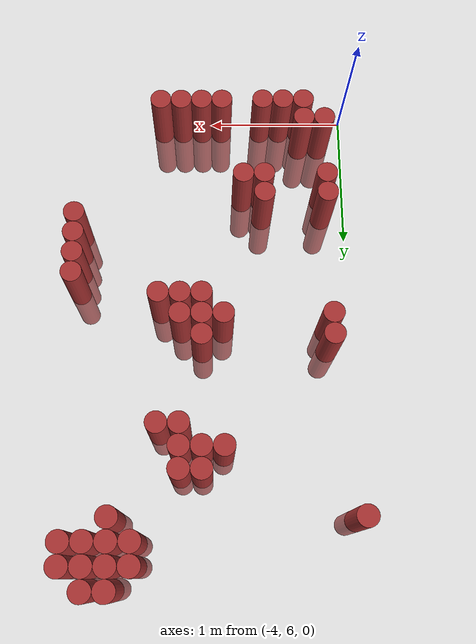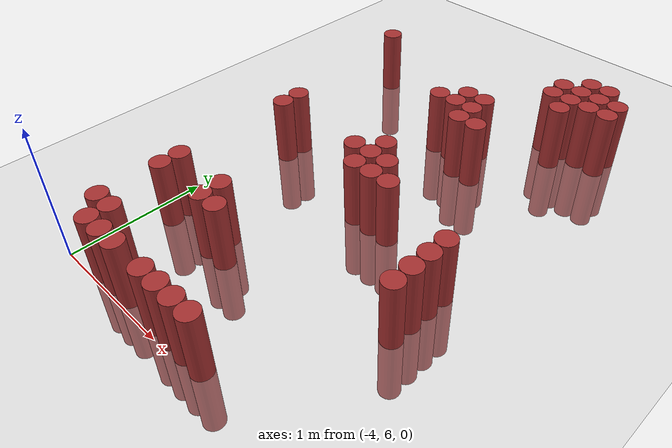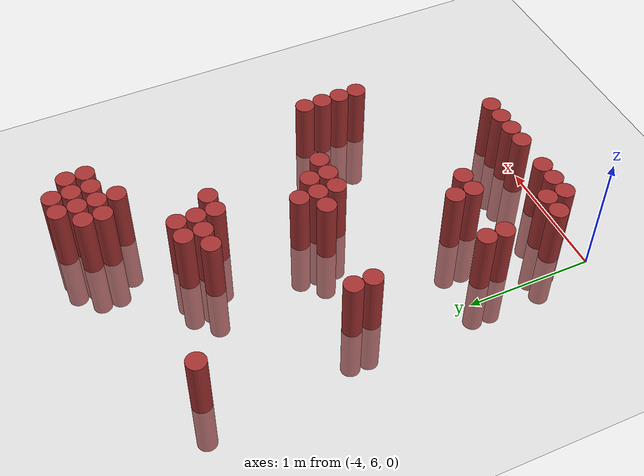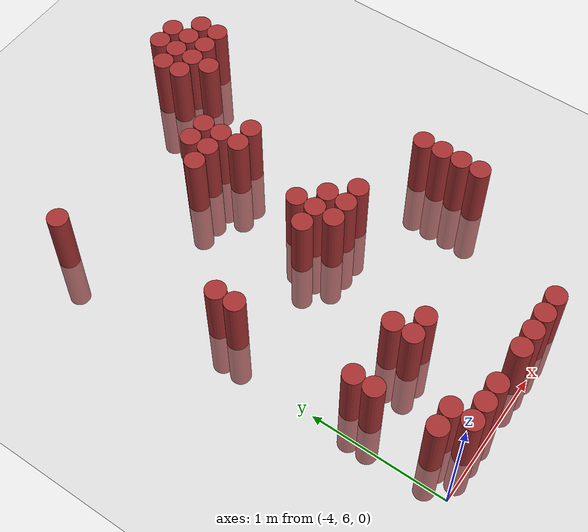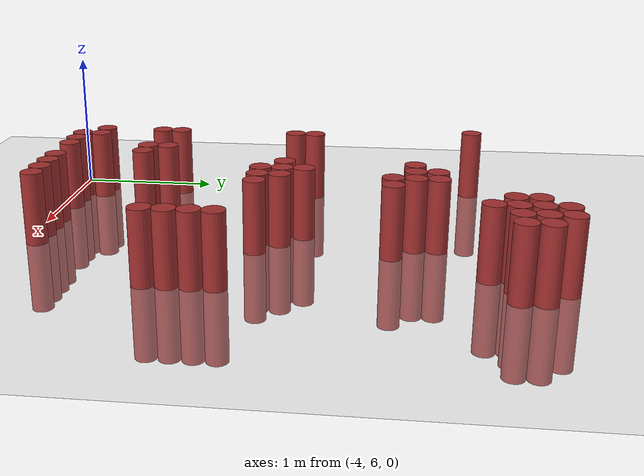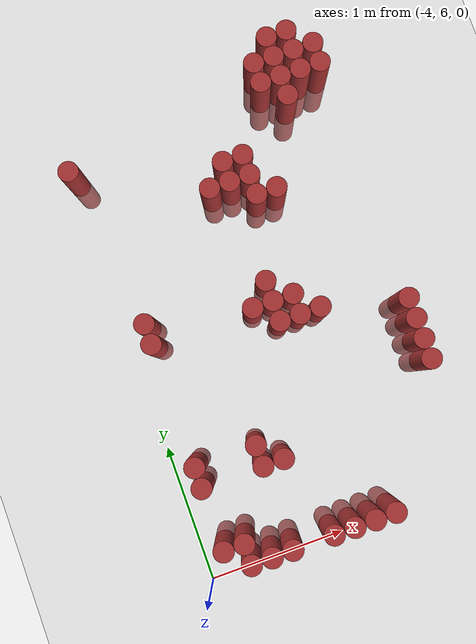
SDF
<sdf version="1.6">
 <world name="world_299">
  <model name="ground_plane">
   <static>1</static>
   <link name="link">
    <collision name="collision">
     <geometry><plane><normal>0 0 1</normal><size>100 100</size></plane></geometry>
     <surface><friction><ode><mu>100</mu><mu2>50</mu2></ode></friction></surface>
    </collision>
    <visual name="visual">
     <cast_shadows>0</cast_shadows>
     <geometry><plane><normal>0 0 1</normal><size>100 100</size></plane></geometry>
     <material>
      <script><uri>file://media/materials/scripts/gazebo.material</uri><name>Gazebo/Grey</name></script>
     </material>
    </visual>
   </link>
  </model>
  <model name="unit_cylinder_158">
   <static>1</static>
   <pose>-3.975000 9.075000 0.000000 0.000000 0.000000 0.000000</pose>
   <link name="link">
    <inertial>
     <mass>1</mass>
     <inertia><ixx>0.145833</ixx><ixy>0</ixy><ixz>0</ixz><iyy>0.145833</iyy><iyz>0</iyz><izz>0.125</izz></inertia>
    </inertial>
    <collision name="collision">
     <geometry><cylinder><radius>0.075000</radius><length>1</length></cylinder></geometry>
    </collision>
    <visual name="visual">
     <geometry><cylinder><radius>0.075000</radius><length>1</length></cylinder></geometry>
     <material>
      <ambient>0.648000 0.192000 0.192000 1</ambient>
      <diffuse>0.648000 0.192000 0.192000 1</diffuse>
     </material>
     <material>
      <script><name>Gazebo/Grey</name><uri>file://media/materials/scripts/gazebo.material</uri></script>
     </material>
    </visual>
   </link>
  </model>
  <model name="unit_cylinder_162">
   <static>1</static>
   <pose>-3.825000 6.225000 0.000000 0.000000 0.000000 0.000000</pose>
   <link name="link">
    <inertial>
     <mass>1</mass>
     <inertia><ixx>0.145833</ixx><ixy>0</ixy><ixz>0</ixz><iyy>0.145833</iyy><iyz>0</iyz><izz>0.125</izz></inertia>
    </inertial>
    <collision name="collision">
     <geometry><cylinder><radius>0.075000</radius><length>1</length></cylinder></geometry>
    </collision>
    <visual name="visual">
     <geometry><cylinder><radius>0.075000</radius><length>1</length></cylinder></geometry>
     <material>
      <ambient>0.648000 0.192000 0.192000 1</ambient>
      <diffuse>0.648000 0.192000 0.192000 1</diffuse>
     </material>
     <material>
      <script><name>Gazebo/Grey</name><uri>file://media/materials/scripts/gazebo.material</uri></script>
     </material>
    </visual>
   </link>
  </model>
  <model name="unit_cylinder_163">
   <static>1</static>
   <pose>-3.825000 6.675000 0.000000 0.000000 0.000000 0.000000</pose>
   <link name="link">
    <inertial>
     <mass>1</mass>
     <inertia><ixx>0.145833</ixx><ixy>0</ixy><ixz>0</ixz><iyy>0.145833</iyy><iyz>0</iyz><izz>0.125</izz></inertia>
    </inertial>
    <collision name="collision">
     <geometry><cylinder><radius>0.075000</radius><length>1</length></cylinder></geometry>
    </collision>
    <visual name="visual">
     <geometry><cylinder><radius>0.075000</radius><length>1</length></cylinder></geometry>
     <material>
      <ambient>0.648000 0.192000 0.192000 1</ambient>
      <diffuse>0.648000 0.192000 0.192000 1</diffuse>
     </material>
     <material>
      <script><name>Gazebo/Grey</name><uri>file://media/materials/scripts/gazebo.material</uri></script>
     </material>
    </visual>
   </link>
  </model>
  <model name="unit_cylinder_164">
   <static>1</static>
   <pose>-3.825000 6.825000 0.000000 0.000000 0.000000 0.000000</pose>
   <link name="link">
    <inertial>
     <mass>1</mass>
     <inertia><ixx>0.145833</ixx><ixy>0</ixy><ixz>0</ixz><iyy>0.145833</iyy><iyz>0</iyz><izz>0.125</izz></inertia>
    </inertial>
    <collision name="collision">
     <geometry><cylinder><radius>0.075000</radius><length>1</length></cylinder></geometry>
    </collision>
    <visual name="visual">
     <geometry><cylinder><radius>0.075000</radius><length>1</length></cylinder></geometry>
     <material>
      <ambient>0.648000 0.192000 0.192000 1</ambient>
      <diffuse>0.648000 0.192000 0.192000 1</diffuse>
     </material>
     <material>
      <script><name>Gazebo/Grey</name><uri>file://media/materials/scripts/gazebo.material</uri></script>
     </material>
    </visual>
   </link>
  </model>
  <model name="unit_cylinder_165">
   <static>1</static>
   <pose>-3.825000 7.725000 0.000000 0.000000 0.000000 0.000000</pose>
   <link name="link">
    <inertial>
     <mass>1</mass>
     <inertia><ixx>0.145833</ixx><ixy>0</ixy><ixz>0</ixz><iyy>0.145833</iyy><iyz>0</iyz><izz>0.125</izz></inertia>
    </inertial>
    <collision name="collision">
     <geometry><cylinder><radius>0.075000</radius><length>1</length></cylinder></geometry>
    </collision>
    <visual name="visual">
     <geometry><cylinder><radius>0.075000</radius><length>1</length></cylinder></geometry>
     <material>
      <ambient>0.648000 0.192000 0.192000 1</ambient>
      <diffuse>0.648000 0.192000 0.192000 1</diffuse>
     </material>
     <material>
      <script><name>Gazebo/Grey</name><uri>file://media/materials/scripts/gazebo.material</uri></script>
     </material>
    </visual>
   </link>
  </model>
  <model name="unit_cylinder_166">
   <static>1</static>
   <pose>-3.825000 7.875000 0.000000 0.000000 0.000000 0.000000</pose>
   <link name="link">
    <inertial>
     <mass>1</mass>
     <inertia><ixx>0.145833</ixx><ixy>0</ixy><ixz>0</ixz><iyy>0.145833</iyy><iyz>0</iyz><izz>0.125</izz></inertia>
    </inertial>
    <collision name="collision">
     <geometry><cylinder><radius>0.075000</radius><length>1</length></cylinder></geometry>
    </collision>
    <visual name="visual">
     <geometry><cylinder><radius>0.075000</radius><length>1</length></cylinder></geometry>
     <material>
      <ambient>0.648000 0.192000 0.192000 1</ambient>
      <diffuse>0.648000 0.192000 0.192000 1</diffuse>
     </material>
     <material>
      <script><name>Gazebo/Grey</name><uri>file://media/materials/scripts/gazebo.material</uri></script>
     </material>
    </visual>
   </link>
  </model>
  <model name="unit_cylinder_168">
   <static>1</static>
   <pose>-3.675000 6.075000 0.000000 0.000000 0.000000 0.000000</pose>
   <link name="link">
    <inertial>
     <mass>1</mass>
     <inertia><ixx>0.145833</ixx><ixy>0</ixy><ixz>0</ixz><iyy>0.145833</iyy><iyz>0</iyz><izz>0.125</izz></inertia>
    </inertial>
    <collision name="collision">
     <geometry><cylinder><radius>0.075000</radius><length>1</length></cylinder></geometry>
    </collision>
    <visual name="visual">
     <geometry><cylinder><radius>0.075000</radius><length>1</length></cylinder></geometry>
     <material>
      <ambient>0.648000 0.192000 0.192000 1</ambient>
      <diffuse>0.648000 0.192000 0.192000 1</diffuse>
     </material>
     <material>
      <script><name>Gazebo/Grey</name><uri>file://media/materials/scripts/gazebo.material</uri></script>
     </material>
    </visual>
   </link>
  </model>
  <model name="unit_cylinder_169">
   <static>1</static>
   <pose>-3.675000 6.225000 0.000000 0.000000 0.000000 0.000000</pose>
   <link name="link">
    <inertial>
     <mass>1</mass>
     <inertia><ixx>0.145833</ixx><ixy>0</ixy><ixz>0</ixz><iyy>0.145833</iyy><iyz>0</iyz><izz>0.125</izz></inertia>
    </inertial>
    <collision name="collision">
     <geometry><cylinder><radius>0.075000</radius><length>1</length></cylinder></geometry>
    </collision>
    <visual name="visual">
     <geometry><cylinder><radius>0.075000</radius><length>1</length></cylinder></geometry>
     <material>
      <ambient>0.648000 0.192000 0.192000 1</ambient>
      <diffuse>0.648000 0.192000 0.192000 1</diffuse>
     </material>
     <material>
      <script><name>Gazebo/Grey</name><uri>file://media/materials/scripts/gazebo.material</uri></script>
     </material>
    </visual>
   </link>
  </model>
  <model name="unit_cylinder_174">
   <static>1</static>
   <pose>-3.525000 6.075000 0.000000 0.000000 0.000000 0.000000</pose>
   <link name="link">
    <inertial>
     <mass>1</mass>
     <inertia><ixx>0.145833</ixx><ixy>0</ixy><ixz>0</ixz><iyy>0.145833</iyy><iyz>0</iyz><izz>0.125</izz></inertia>
    </inertial>
    <collision name="collision">
     <geometry><cylinder><radius>0.075000</radius><length>1</length></cylinder></geometry>
    </collision>
    <visual name="visual">
     <geometry><cylinder><radius>0.075000</radius><length>1</length></cylinder></geometry>
     <material>
      <ambient>0.648000 0.192000 0.192000 1</ambient>
      <diffuse>0.648000 0.192000 0.192000 1</diffuse>
     </material>
     <material>
      <script><name>Gazebo/Grey</name><uri>file://media/materials/scripts/gazebo.material</uri></script>
     </material>
    </visual>
   </link>
  </model>
  <model name="unit_cylinder_176">
   <static>1</static>
   <pose>-3.375000 6.075000 0.000000 0.000000 0.000000 0.000000</pose>
   <link name="link">
    <inertial>
     <mass>1</mass>
     <inertia><ixx>0.145833</ixx><ixy>0</ixy><ixz>0</ixz><iyy>0.145833</iyy><iyz>0</iyz><izz>0.125</izz></inertia>
    </inertial>
    <collision name="collision">
     <geometry><cylinder><radius>0.075000</radius><length>1</length></cylinder></geometry>
    </collision>
    <visual name="visual">
     <geometry><cylinder><radius>0.075000</radius><length>1</length></cylinder></geometry>
     <material>
      <ambient>0.648000 0.192000 0.192000 1</ambient>
      <diffuse>0.648000 0.192000 0.192000 1</diffuse>
     </material>
     <material>
      <script><name>Gazebo/Grey</name><uri>file://media/materials/scripts/gazebo.material</uri></script>
     </material>
    </visual>
   </link>
  </model>
  <model name="unit_cylinder_177">
   <static>1</static>
   <pose>-3.375000 6.675000 0.000000 0.000000 0.000000 0.000000</pose>
   <link name="link">
    <inertial>
     <mass>1</mass>
     <inertia><ixx>0.145833</ixx><ixy>0</ixy><ixz>0</ixz><iyy>0.145833</iyy><iyz>0</iyz><izz>0.125</izz></inertia>
    </inertial>
    <collision name="collision">
     <geometry><cylinder><radius>0.075000</radius><length>1</length></cylinder></geometry>
    </collision>
    <visual name="visual">
     <geometry><cylinder><radius>0.075000</radius><length>1</length></cylinder></geometry>
     <material>
      <ambient>0.648000 0.192000 0.192000 1</ambient>
      <diffuse>0.648000 0.192000 0.192000 1</diffuse>
     </material>
     <material>
      <script><name>Gazebo/Grey</name><uri>file://media/materials/scripts/gazebo.material</uri></script>
     </material>
    </visual>
   </link>
  </model>
  <model name="unit_cylinder_178">
   <static>1</static>
   <pose>-3.375000 6.825000 0.000000 0.000000 0.000000 0.000000</pose>
   <link name="link">
    <inertial>
     <mass>1</mass>
     <inertia><ixx>0.145833</ixx><ixy>0</ixy><ixz>0</ixz><iyy>0.145833</iyy><iyz>0</iyz><izz>0.125</izz></inertia>
    </inertial>
    <collision name="collision">
     <geometry><cylinder><radius>0.075000</radius><length>1</length></cylinder></geometry>
    </collision>
    <visual name="visual">
     <geometry><cylinder><radius>0.075000</radius><length>1</length></cylinder></geometry>
     <material>
      <ambient>0.648000 0.192000 0.192000 1</ambient>
      <diffuse>0.648000 0.192000 0.192000 1</diffuse>
     </material>
     <material>
      <script><name>Gazebo/Grey</name><uri>file://media/materials/scripts/gazebo.material</uri></script>
     </material>
    </visual>
   </link>
  </model>
  <model name="unit_cylinder_179">
   <static>1</static>
   <pose>-3.225000 6.675000 0.000000 0.000000 0.000000 0.000000</pose>
   <link name="link">
    <inertial>
     <mass>1</mass>
     <inertia><ixx>0.145833</ixx><ixy>0</ixy><ixz>0</ixz><iyy>0.145833</iyy><iyz>0</iyz><izz>0.125</izz></inertia>
    </inertial>
    <collision name="collision">
     <geometry><cylinder><radius>0.075000</radius><length>1</length></cylinder></geometry>
    </collision>
    <visual name="visual">
     <geometry><cylinder><radius>0.075000</radius><length>1</length></cylinder></geometry>
     <material>
      <ambient>0.648000 0.192000 0.192000 1</ambient>
      <diffuse>0.648000 0.192000 0.192000 1</diffuse>
     </material>
     <material>
      <script><name>Gazebo/Grey</name><uri>file://media/materials/scripts/gazebo.material</uri></script>
     </material>
    </visual>
   </link>
  </model>
  <model name="unit_cylinder_182">
   <static>1</static>
   <pose>-3.075000 6.075000 0.000000 0.000000 0.000000 0.000000</pose>
   <link name="link">
    <inertial>
     <mass>1</mass>
     <inertia><ixx>0.145833</ixx><ixy>0</ixy><ixz>0</ixz><iyy>0.145833</iyy><iyz>0</iyz><izz>0.125</izz></inertia>
    </inertial>
    <collision name="collision">
     <geometry><cylinder><radius>0.075000</radius><length>1</length></cylinder></geometry>
    </collision>
    <visual name="visual">
     <geometry><cylinder><radius>0.075000</radius><length>1</length></cylinder></geometry>
     <material>
      <ambient>0.648000 0.192000 0.192000 1</ambient>
      <diffuse>0.648000 0.192000 0.192000 1</diffuse>
     </material>
     <material>
      <script><name>Gazebo/Grey</name><uri>file://media/materials/scripts/gazebo.material</uri></script>
     </material>
    </visual>
   </link>
  </model>
  <model name="unit_cylinder_183">
   <static>1</static>
   <pose>-3.075000 7.725000 0.000000 0.000000 0.000000 0.000000</pose>
   <link name="link">
    <inertial>
     <mass>1</mass>
     <inertia><ixx>0.145833</ixx><ixy>0</ixy><ixz>0</ixz><iyy>0.145833</iyy><iyz>0</iyz><izz>0.125</izz></inertia>
    </inertial>
    <collision name="collision">
     <geometry><cylinder><radius>0.075000</radius><length>1</length></cylinder></geometry>
    </collision>
    <visual name="visual">
     <geometry><cylinder><radius>0.075000</radius><length>1</length></cylinder></geometry>
     <material>
      <ambient>0.648000 0.192000 0.192000 1</ambient>
      <diffuse>0.648000 0.192000 0.192000 1</diffuse>
     </material>
     <material>
      <script><name>Gazebo/Grey</name><uri>file://media/materials/scripts/gazebo.material</uri></script>
     </material>
    </visual>
   </link>
  </model>
  <model name="unit_cylinder_184">
   <static>1</static>
   <pose>-3.075000 8.625000 0.000000 0.000000 0.000000 0.000000</pose>
   <link name="link">
    <inertial>
     <mass>1</mass>
     <inertia><ixx>0.145833</ixx><ixy>0</ixy><ixz>0</ixz><iyy>0.145833</iyy><iyz>0</iyz><izz>0.125</izz></inertia>
    </inertial>
    <collision name="collision">
     <geometry><cylinder><radius>0.075000</radius><length>1</length></cylinder></geometry>
    </collision>
    <visual name="visual">
     <geometry><cylinder><radius>0.075000</radius><length>1</length></cylinder></geometry>
     <material>
      <ambient>0.648000 0.192000 0.192000 1</ambient>
      <diffuse>0.648000 0.192000 0.192000 1</diffuse>
     </material>
     <material>
      <script><name>Gazebo/Grey</name><uri>file://media/materials/scripts/gazebo.material</uri></script>
     </material>
    </visual>
   </link>
  </model>
  <model name="unit_cylinder_186">
   <static>1</static>
   <pose>-2.925000 6.075000 0.000000 0.000000 0.000000 0.000000</pose>
   <link name="link">
    <inertial>
     <mass>1</mass>
     <inertia><ixx>0.145833</ixx><ixy>0</ixy><ixz>0</ixz><iyy>0.145833</iyy><iyz>0</iyz><izz>0.125</izz></inertia>
    </inertial>
    <collision name="collision">
     <geometry><cylinder><radius>0.075000</radius><length>1</length></cylinder></geometry>
    </collision>
    <visual name="visual">
     <geometry><cylinder><radius>0.075000</radius><length>1</length></cylinder></geometry>
     <material>
      <ambient>0.648000 0.192000 0.192000 1</ambient>
      <diffuse>0.648000 0.192000 0.192000 1</diffuse>
     </material>
     <material>
      <script><name>Gazebo/Grey</name><uri>file://media/materials/scripts/gazebo.material</uri></script>
     </material>
    </visual>
   </link>
  </model>
  <model name="unit_cylinder_187">
   <static>1</static>
   <pose>-2.925000 7.575000 0.000000 0.000000 0.000000 0.000000</pose>
   <link name="link">
    <inertial>
     <mass>1</mass>
     <inertia><ixx>0.145833</ixx><ixy>0</ixy><ixz>0</ixz><iyy>0.145833</iyy><iyz>0</iyz><izz>0.125</izz></inertia>
    </inertial>
    <collision name="collision">
     <geometry><cylinder><radius>0.075000</radius><length>1</length></cylinder></geometry>
    </collision>
    <visual name="visual">
     <geometry><cylinder><radius>0.075000</radius><length>1</length></cylinder></geometry>
     <material>
      <ambient>0.648000 0.192000 0.192000 1</ambient>
      <diffuse>0.648000 0.192000 0.192000 1</diffuse>
     </material>
     <material>
      <script><name>Gazebo/Grey</name><uri>file://media/materials/scripts/gazebo.material</uri></script>
     </material>
    </visual>
   </link>
  </model>
  <model name="unit_cylinder_188">
   <static>1</static>
   <pose>-2.925000 7.725000 0.000000 0.000000 0.000000 0.000000</pose>
   <link name="link">
    <inertial>
     <mass>1</mass>
     <inertia><ixx>0.145833</ixx><ixy>0</ixy><ixz>0</ixz><iyy>0.145833</iyy><iyz>0</iyz><izz>0.125</izz></inertia>
    </inertial>
    <collision name="collision">
     <geometry><cylinder><radius>0.075000</radius><length>1</length></cylinder></geometry>
    </collision>
    <visual name="visual">
     <geometry><cylinder><radius>0.075000</radius><length>1</length></cylinder></geometry>
     <material>
      <ambient>0.648000 0.192000 0.192000 1</ambient>
      <diffuse>0.648000 0.192000 0.192000 1</diffuse>
     </material>
     <material>
      <script><name>Gazebo/Grey</name><uri>file://media/materials/scripts/gazebo.material</uri></script>
     </material>
    </visual>
   </link>
  </model>
  <model name="unit_cylinder_189">
   <static>1</static>
   <pose>-2.925000 7.875000 0.000000 0.000000 0.000000 0.000000</pose>
   <link name="link">
    <inertial>
     <mass>1</mass>
     <inertia><ixx>0.145833</ixx><ixy>0</ixy><ixz>0</ixz><iyy>0.145833</iyy><iyz>0</iyz><izz>0.125</izz></inertia>
    </inertial>
    <collision name="collision">
     <geometry><cylinder><radius>0.075000</radius><length>1</length></cylinder></geometry>
    </collision>
    <visual name="visual">
     <geometry><cylinder><radius>0.075000</radius><length>1</length></cylinder></geometry>
     <material>
      <ambient>0.648000 0.192000 0.192000 1</ambient>
      <diffuse>0.648000 0.192000 0.192000 1</diffuse>
     </material>
     <material>
      <script><name>Gazebo/Grey</name><uri>file://media/materials/scripts/gazebo.material</uri></script>
     </material>
    </visual>
   </link>
  </model>
  <model name="unit_cylinder_190">
   <static>1</static>
   <pose>-2.925000 8.625000 0.000000 0.000000 0.000000 0.000000</pose>
   <link name="link">
    <inertial>
     <mass>1</mass>
     <inertia><ixx>0.145833</ixx><ixy>0</ixy><ixz>0</ixz><iyy>0.145833</iyy><iyz>0</iyz><izz>0.125</izz></inertia>
    </inertial>
    <collision name="collision">
     <geometry><cylinder><radius>0.075000</radius><length>1</length></cylinder></geometry>
    </collision>
    <visual name="visual">
     <geometry><cylinder><radius>0.075000</radius><length>1</length></cylinder></geometry>
     <material>
      <ambient>0.648000 0.192000 0.192000 1</ambient>
      <diffuse>0.648000 0.192000 0.192000 1</diffuse>
     </material>
     <material>
      <script><name>Gazebo/Grey</name><uri>file://media/materials/scripts/gazebo.material</uri></script>
     </material>
    </visual>
   </link>
  </model>
  <model name="unit_cylinder_191">
   <static>1</static>
   <pose>-2.925000 8.775000 0.000000 0.000000 0.000000 0.000000</pose>
   <link name="link">
    <inertial>
     <mass>1</mass>
     <inertia><ixx>0.145833</ixx><ixy>0</ixy><ixz>0</ixz><iyy>0.145833</iyy><iyz>0</iyz><izz>0.125</izz></inertia>
    </inertial>
    <collision name="collision">
     <geometry><cylinder><radius>0.075000</radius><length>1</length></cylinder></geometry>
    </collision>
    <visual name="visual">
     <geometry><cylinder><radius>0.075000</radius><length>1</length></cylinder></geometry>
     <material>
      <ambient>0.648000 0.192000 0.192000 1</ambient>
      <diffuse>0.648000 0.192000 0.192000 1</diffuse>
     </material>
     <material>
      <script><name>Gazebo/Grey</name><uri>file://media/materials/scripts/gazebo.material</uri></script>
     </material>
    </visual>
   </link>
  </model>
  <model name="unit_cylinder_193">
   <static>1</static>
   <pose>-2.775000 6.075000 0.000000 0.000000 0.000000 0.000000</pose>
   <link name="link">
    <inertial>
     <mass>1</mass>
     <inertia><ixx>0.145833</ixx><ixy>0</ixy><ixz>0</ixz><iyy>0.145833</iyy><iyz>0</iyz><izz>0.125</izz></inertia>
    </inertial>
    <collision name="collision">
     <geometry><cylinder><radius>0.075000</radius><length>1</length></cylinder></geometry>
    </collision>
    <visual name="visual">
     <geometry><cylinder><radius>0.075000</radius><length>1</length></cylinder></geometry>
     <material>
      <ambient>0.648000 0.192000 0.192000 1</ambient>
      <diffuse>0.648000 0.192000 0.192000 1</diffuse>
     </material>
     <material>
      <script><name>Gazebo/Grey</name><uri>file://media/materials/scripts/gazebo.material</uri></script>
     </material>
    </visual>
   </link>
  </model>
  <model name="unit_cylinder_194">
   <static>1</static>
   <pose>-2.775000 7.575000 0.000000 0.000000 0.000000 0.000000</pose>
   <link name="link">
    <inertial>
     <mass>1</mass>
     <inertia><ixx>0.145833</ixx><ixy>0</ixy><ixz>0</ixz><iyy>0.145833</iyy><iyz>0</iyz><izz>0.125</izz></inertia>
    </inertial>
    <collision name="collision">
     <geometry><cylinder><radius>0.075000</radius><length>1</length></cylinder></geometry>
    </collision>
    <visual name="visual">
     <geometry><cylinder><radius>0.075000</radius><length>1</length></cylinder></geometry>
     <material>
      <ambient>0.648000 0.192000 0.192000 1</ambient>
      <diffuse>0.648000 0.192000 0.192000 1</diffuse>
     </material>
     <material>
      <script><name>Gazebo/Grey</name><uri>file://media/materials/scripts/gazebo.material</uri></script>
     </material>
    </visual>
   </link>
  </model>
  <model name="unit_cylinder_195">
   <static>1</static>
   <pose>-2.775000 7.725000 0.000000 0.000000 0.000000 0.000000</pose>
   <link name="link">
    <inertial>
     <mass>1</mass>
     <inertia><ixx>0.145833</ixx><ixy>0</ixy><ixz>0</ixz><iyy>0.145833</iyy><iyz>0</iyz><izz>0.125</izz></inertia>
    </inertial>
    <collision name="collision">
     <geometry><cylinder><radius>0.075000</radius><length>1</length></cylinder></geometry>
    </collision>
    <visual name="visual">
     <geometry><cylinder><radius>0.075000</radius><length>1</length></cylinder></geometry>
     <material>
      <ambient>0.648000 0.192000 0.192000 1</ambient>
      <diffuse>0.648000 0.192000 0.192000 1</diffuse>
     </material>
     <material>
      <script><name>Gazebo/Grey</name><uri>file://media/materials/scripts/gazebo.material</uri></script>
     </material>
    </visual>
   </link>
  </model>
  <model name="unit_cylinder_196">
   <static>1</static>
   <pose>-2.775000 8.475000 0.000000 0.000000 0.000000 0.000000</pose>
   <link name="link">
    <inertial>
     <mass>1</mass>
     <inertia><ixx>0.145833</ixx><ixy>0</ixy><ixz>0</ixz><iyy>0.145833</iyy><iyz>0</iyz><izz>0.125</izz></inertia>
    </inertial>
    <collision name="collision">
     <geometry><cylinder><radius>0.075000</radius><length>1</length></cylinder></geometry>
    </collision>
    <visual name="visual">
     <geometry><cylinder><radius>0.075000</radius><length>1</length></cylinder></geometry>
     <material>
      <ambient>0.648000 0.192000 0.192000 1</ambient>
      <diffuse>0.648000 0.192000 0.192000 1</diffuse>
     </material>
     <material>
      <script><name>Gazebo/Grey</name><uri>file://media/materials/scripts/gazebo.material</uri></script>
     </material>
    </visual>
   </link>
  </model>
  <model name="unit_cylinder_197">
   <static>1</static>
   <pose>-2.775000 8.625000 0.000000 0.000000 0.000000 0.000000</pose>
   <link name="link">
    <inertial>
     <mass>1</mass>
     <inertia><ixx>0.145833</ixx><ixy>0</ixy><ixz>0</ixz><iyy>0.145833</iyy><iyz>0</iyz><izz>0.125</izz></inertia>
    </inertial>
    <collision name="collision">
     <geometry><cylinder><radius>0.075000</radius><length>1</length></cylinder></geometry>
    </collision>
    <visual name="visual">
     <geometry><cylinder><radius>0.075000</radius><length>1</length></cylinder></geometry>
     <material>
      <ambient>0.648000 0.192000 0.192000 1</ambient>
      <diffuse>0.648000 0.192000 0.192000 1</diffuse>
     </material>
     <material>
      <script><name>Gazebo/Grey</name><uri>file://media/materials/scripts/gazebo.material</uri></script>
     </material>
    </visual>
   </link>
  </model>
  <model name="unit_cylinder_198">
   <static>1</static>
   <pose>-2.775000 8.775000 0.000000 0.000000 0.000000 0.000000</pose>
   <link name="link">
    <inertial>
     <mass>1</mass>
     <inertia><ixx>0.145833</ixx><ixy>0</ixy><ixz>0</ixz><iyy>0.145833</iyy><iyz>0</iyz><izz>0.125</izz></inertia>
    </inertial>
    <collision name="collision">
     <geometry><cylinder><radius>0.075000</radius><length>1</length></cylinder></geometry>
    </collision>
    <visual name="visual">
     <geometry><cylinder><radius>0.075000</radius><length>1</length></cylinder></geometry>
     <material>
      <ambient>0.648000 0.192000 0.192000 1</ambient>
      <diffuse>0.648000 0.192000 0.192000 1</diffuse>
     </material>
     <material>
      <script><name>Gazebo/Grey</name><uri>file://media/materials/scripts/gazebo.material</uri></script>
     </material>
    </visual>
   </link>
  </model>
  <model name="unit_cylinder_201">
   <static>1</static>
   <pose>-2.625000 6.075000 0.000000 0.000000 0.000000 0.000000</pose>
   <link name="link">
    <inertial>
     <mass>1</mass>
     <inertia><ixx>0.145833</ixx><ixy>0</ixy><ixz>0</ixz><iyy>0.145833</iyy><iyz>0</iyz><izz>0.125</izz></inertia>
    </inertial>
    <collision name="collision">
     <geometry><cylinder><radius>0.075000</radius><length>1</length></cylinder></geometry>
    </collision>
    <visual name="visual">
     <geometry><cylinder><radius>0.075000</radius><length>1</length></cylinder></geometry>
     <material>
      <ambient>0.648000 0.192000 0.192000 1</ambient>
      <diffuse>0.648000 0.192000 0.192000 1</diffuse>
     </material>
     <material>
      <script><name>Gazebo/Grey</name><uri>file://media/materials/scripts/gazebo.material</uri></script>
     </material>
    </visual>
   </link>
  </model>
  <model name="unit_cylinder_202">
   <static>1</static>
   <pose>-2.625000 7.575000 0.000000 0.000000 0.000000 0.000000</pose>
   <link name="link">
    <inertial>
     <mass>1</mass>
     <inertia><ixx>0.145833</ixx><ixy>0</ixy><ixz>0</ixz><iyy>0.145833</iyy><iyz>0</iyz><izz>0.125</izz></inertia>
    </inertial>
    <collision name="collision">
     <geometry><cylinder><radius>0.075000</radius><length>1</length></cylinder></geometry>
    </collision>
    <visual name="visual">
     <geometry><cylinder><radius>0.075000</radius><length>1</length></cylinder></geometry>
     <material>
      <ambient>0.648000 0.192000 0.192000 1</ambient>
      <diffuse>0.648000 0.192000 0.192000 1</diffuse>
     </material>
     <material>
      <script><name>Gazebo/Grey</name><uri>file://media/materials/scripts/gazebo.material</uri></script>
     </material>
    </visual>
   </link>
  </model>
  <model name="unit_cylinder_203">
   <static>1</static>
   <pose>-2.625000 8.475000 0.000000 0.000000 0.000000 0.000000</pose>
   <link name="link">
    <inertial>
     <mass>1</mass>
     <inertia><ixx>0.145833</ixx><ixy>0</ixy><ixz>0</ixz><iyy>0.145833</iyy><iyz>0</iyz><izz>0.125</izz></inertia>
    </inertial>
    <collision name="collision">
     <geometry><cylinder><radius>0.075000</radius><length>1</length></cylinder></geometry>
    </collision>
    <visual name="visual">
     <geometry><cylinder><radius>0.075000</radius><length>1</length></cylinder></geometry>
     <material>
      <ambient>0.648000 0.192000 0.192000 1</ambient>
      <diffuse>0.648000 0.192000 0.192000 1</diffuse>
     </material>
     <material>
      <script><name>Gazebo/Grey</name><uri>file://media/materials/scripts/gazebo.material</uri></script>
     </material>
    </visual>
   </link>
  </model>
  <model name="unit_cylinder_206">
   <static>1</static>
   <pose>-2.475000 9.225000 0.000000 0.000000 0.000000 0.000000</pose>
   <link name="link">
    <inertial>
     <mass>1</mass>
     <inertia><ixx>0.145833</ixx><ixy>0</ixy><ixz>0</ixz><iyy>0.145833</iyy><iyz>0</iyz><izz>0.125</izz></inertia>
    </inertial>
    <collision name="collision">
     <geometry><cylinder><radius>0.075000</radius><length>1</length></cylinder></geometry>
    </collision>
    <visual name="visual">
     <geometry><cylinder><radius>0.075000</radius><length>1</length></cylinder></geometry>
     <material>
      <ambient>0.648000 0.192000 0.192000 1</ambient>
      <diffuse>0.648000 0.192000 0.192000 1</diffuse>
     </material>
     <material>
      <script><name>Gazebo/Grey</name><uri>file://media/materials/scripts/gazebo.material</uri></script>
     </material>
    </visual>
   </link>
  </model>
  <model name="unit_cylinder_207">
   <static>1</static>
   <pose>-2.475000 9.375000 0.000000 0.000000 0.000000 0.000000</pose>
   <link name="link">
    <inertial>
     <mass>1</mass>
     <inertia><ixx>0.145833</ixx><ixy>0</ixy><ixz>0</ixz><iyy>0.145833</iyy><iyz>0</iyz><izz>0.125</izz></inertia>
    </inertial>
    <collision name="collision">
     <geometry><cylinder><radius>0.075000</radius><length>1</length></cylinder></geometry>
    </collision>
    <visual name="visual">
     <geometry><cylinder><radius>0.075000</radius><length>1</length></cylinder></geometry>
     <material>
      <ambient>0.648000 0.192000 0.192000 1</ambient>
      <diffuse>0.648000 0.192000 0.192000 1</diffuse>
     </material>
     <material>
      <script><name>Gazebo/Grey</name><uri>file://media/materials/scripts/gazebo.material</uri></script>
     </material>
    </visual>
   </link>
  </model>
  <model name="unit_cylinder_208">
   <static>1</static>
   <pose>-2.325000 9.075000 0.000000 0.000000 0.000000 0.000000</pose>
   <link name="link">
    <inertial>
     <mass>1</mass>
     <inertia><ixx>0.145833</ixx><ixy>0</ixy><ixz>0</ixz><iyy>0.145833</iyy><iyz>0</iyz><izz>0.125</izz></inertia>
    </inertial>
    <collision name="collision">
     <geometry><cylinder><radius>0.075000</radius><length>1</length></cylinder></geometry>
    </collision>
    <visual name="visual">
     <geometry><cylinder><radius>0.075000</radius><length>1</length></cylinder></geometry>
     <material>
      <ambient>0.648000 0.192000 0.192000 1</ambient>
      <diffuse>0.648000 0.192000 0.192000 1</diffuse>
     </material>
     <material>
      <script><name>Gazebo/Grey</name><uri>file://media/materials/scripts/gazebo.material</uri></script>
     </material>
    </visual>
   </link>
  </model>
  <model name="unit_cylinder_209">
   <static>1</static>
   <pose>-2.325000 9.225000 0.000000 0.000000 0.000000 0.000000</pose>
   <link name="link">
    <inertial>
     <mass>1</mass>
     <inertia><ixx>0.145833</ixx><ixy>0</ixy><ixz>0</ixz><iyy>0.145833</iyy><iyz>0</iyz><izz>0.125</izz></inertia>
    </inertial>
    <collision name="collision">
     <geometry><cylinder><radius>0.075000</radius><length>1</length></cylinder></geometry>
    </collision>
    <visual name="visual">
     <geometry><cylinder><radius>0.075000</radius><length>1</length></cylinder></geometry>
     <material>
      <ambient>0.648000 0.192000 0.192000 1</ambient>
      <diffuse>0.648000 0.192000 0.192000 1</diffuse>
     </material>
     <material>
      <script><name>Gazebo/Grey</name><uri>file://media/materials/scripts/gazebo.material</uri></script>
     </material>
    </visual>
   </link>
  </model>
  <model name="unit_cylinder_210">
   <static>1</static>
   <pose>-2.325000 9.375000 0.000000 0.000000 0.000000 0.000000</pose>
   <link name="link">
    <inertial>
     <mass>1</mass>
     <inertia><ixx>0.145833</ixx><ixy>0</ixy><ixz>0</ixz><iyy>0.145833</iyy><iyz>0</iyz><izz>0.125</izz></inertia>
    </inertial>
    <collision name="collision">
     <geometry><cylinder><radius>0.075000</radius><length>1</length></cylinder></geometry>
    </collision>
    <visual name="visual">
     <geometry><cylinder><radius>0.075000</radius><length>1</length></cylinder></geometry>
     <material>
      <ambient>0.648000 0.192000 0.192000 1</ambient>
      <diffuse>0.648000 0.192000 0.192000 1</diffuse>
     </material>
     <material>
      <script><name>Gazebo/Grey</name><uri>file://media/materials/scripts/gazebo.material</uri></script>
     </material>
    </visual>
   </link>
  </model>
  <model name="unit_cylinder_211">
   <static>1</static>
   <pose>-2.325000 9.525000 0.000000 0.000000 0.000000 0.000000</pose>
   <link name="link">
    <inertial>
     <mass>1</mass>
     <inertia><ixx>0.145833</ixx><ixy>0</ixy><ixz>0</ixz><iyy>0.145833</iyy><iyz>0</iyz><izz>0.125</izz></inertia>
    </inertial>
    <collision name="collision">
     <geometry><cylinder><radius>0.075000</radius><length>1</length></cylinder></geometry>
    </collision>
    <visual name="visual">
     <geometry><cylinder><radius>0.075000</radius><length>1</length></cylinder></geometry>
     <material>
      <ambient>0.648000 0.192000 0.192000 1</ambient>
      <diffuse>0.648000 0.192000 0.192000 1</diffuse>
     </material>
     <material>
      <script><name>Gazebo/Grey</name><uri>file://media/materials/scripts/gazebo.material</uri></script>
     </material>
    </visual>
   </link>
  </model>
  <model name="unit_cylinder_212">
   <static>1</static>
   <pose>-2.175000 9.225000 0.000000 0.000000 0.000000 0.000000</pose>
   <link name="link">
    <inertial>
     <mass>1</mass>
     <inertia><ixx>0.145833</ixx><ixy>0</ixy><ixz>0</ixz><iyy>0.145833</iyy><iyz>0</iyz><izz>0.125</izz></inertia>
    </inertial>
    <collision name="collision">
     <geometry><cylinder><radius>0.075000</radius><length>1</length></cylinder></geometry>
    </collision>
    <visual name="visual">
     <geometry><cylinder><radius>0.075000</radius><length>1</length></cylinder></geometry>
     <material>
      <ambient>0.648000 0.192000 0.192000 1</ambient>
      <diffuse>0.648000 0.192000 0.192000 1</diffuse>
     </material>
     <material>
      <script><name>Gazebo/Grey</name><uri>file://media/materials/scripts/gazebo.material</uri></script>
     </material>
    </visual>
   </link>
  </model>
  <model name="unit_cylinder_213">
   <static>1</static>
   <pose>-2.175000 9.375000 0.000000 0.000000 0.000000 0.000000</pose>
   <link name="link">
    <inertial>
     <mass>1</mass>
     <inertia><ixx>0.145833</ixx><ixy>0</ixy><ixz>0</ixz><iyy>0.145833</iyy><iyz>0</iyz><izz>0.125</izz></inertia>
    </inertial>
    <collision name="collision">
     <geometry><cylinder><radius>0.075000</radius><length>1</length></cylinder></geometry>
    </collision>
    <visual name="visual">
     <geometry><cylinder><radius>0.075000</radius><length>1</length></cylinder></geometry>
     <material>
      <ambient>0.648000 0.192000 0.192000 1</ambient>
      <diffuse>0.648000 0.192000 0.192000 1</diffuse>
     </material>
     <material>
      <script><name>Gazebo/Grey</name><uri>file://media/materials/scripts/gazebo.material</uri></script>
     </material>
    </visual>
   </link>
  </model>
  <model name="unit_cylinder_214">
   <static>1</static>
   <pose>-2.175000 9.525000 0.000000 0.000000 0.000000 0.000000</pose>
   <link name="link">
    <inertial>
     <mass>1</mass>
     <inertia><ixx>0.145833</ixx><ixy>0</ixy><ixz>0</ixz><iyy>0.145833</iyy><iyz>0</iyz><izz>0.125</izz></inertia>
    </inertial>
    <collision name="collision">
     <geometry><cylinder><radius>0.075000</radius><length>1</length></cylinder></geometry>
    </collision>
    <visual name="visual">
     <geometry><cylinder><radius>0.075000</radius><length>1</length></cylinder></geometry>
     <material>
      <ambient>0.648000 0.192000 0.192000 1</ambient>
      <diffuse>0.648000 0.192000 0.192000 1</diffuse>
     </material>
     <material>
      <script><name>Gazebo/Grey</name><uri>file://media/materials/scripts/gazebo.material</uri></script>
     </material>
    </visual>
   </link>
  </model>
  <model name="unit_cylinder_215">
   <static>1</static>
   <pose>-2.025000 6.975000 0.000000 0.000000 0.000000 0.000000</pose>
   <link name="link">
    <inertial>
     <mass>1</mass>
     <inertia><ixx>0.145833</ixx><ixy>0</ixy><ixz>0</ixz><iyy>0.145833</iyy><iyz>0</iyz><izz>0.125</izz></inertia>
    </inertial>
    <collision name="collision">
     <geometry><cylinder><radius>0.075000</radius><length>1</length></cylinder></geometry>
    </collision>
    <visual name="visual">
     <geometry><cylinder><radius>0.075000</radius><length>1</length></cylinder></geometry>
     <material>
      <ambient>0.648000 0.192000 0.192000 1</ambient>
      <diffuse>0.648000 0.192000 0.192000 1</diffuse>
     </material>
     <material>
      <script><name>Gazebo/Grey</name><uri>file://media/materials/scripts/gazebo.material</uri></script>
     </material>
    </visual>
   </link>
  </model>
  <model name="unit_cylinder_216">
   <static>1</static>
   <pose>-2.025000 7.125000 0.000000 0.000000 0.000000 0.000000</pose>
   <link name="link">
    <inertial>
     <mass>1</mass>
     <inertia><ixx>0.145833</ixx><ixy>0</ixy><ixz>0</ixz><iyy>0.145833</iyy><iyz>0</iyz><izz>0.125</izz></inertia>
    </inertial>
    <collision name="collision">
     <geometry><cylinder><radius>0.075000</radius><length>1</length></cylinder></geometry>
    </collision>
    <visual name="visual">
     <geometry><cylinder><radius>0.075000</radius><length>1</length></cylinder></geometry>
     <material>
      <ambient>0.648000 0.192000 0.192000 1</ambient>
      <diffuse>0.648000 0.192000 0.192000 1</diffuse>
     </material>
     <material>
      <script><name>Gazebo/Grey</name><uri>file://media/materials/scripts/gazebo.material</uri></script>
     </material>
    </visual>
   </link>
  </model>
  <model name="unit_cylinder_217">
   <static>1</static>
   <pose>-2.025000 7.275000 0.000000 0.000000 0.000000 0.000000</pose>
   <link name="link">
    <inertial>
     <mass>1</mass>
     <inertia><ixx>0.145833</ixx><ixy>0</ixy><ixz>0</ixz><iyy>0.145833</iyy><iyz>0</iyz><izz>0.125</izz></inertia>
    </inertial>
    <collision name="collision">
     <geometry><cylinder><radius>0.075000</radius><length>1</length></cylinder></geometry>
    </collision>
    <visual name="visual">
     <geometry><cylinder><radius>0.075000</radius><length>1</length></cylinder></geometry>
     <material>
      <ambient>0.648000 0.192000 0.192000 1</ambient>
      <diffuse>0.648000 0.192000 0.192000 1</diffuse>
     </material>
     <material>
      <script><name>Gazebo/Grey</name><uri>file://media/materials/scripts/gazebo.material</uri></script>
     </material>
    </visual>
   </link>
  </model>
  <model name="unit_cylinder_218">
   <static>1</static>
   <pose>-2.025000 7.425000 0.000000 0.000000 0.000000 0.000000</pose>
   <link name="link">
    <inertial>
     <mass>1</mass>
     <inertia><ixx>0.145833</ixx><ixy>0</ixy><ixz>0</ixz><iyy>0.145833</iyy><iyz>0</iyz><izz>0.125</izz></inertia>
    </inertial>
    <collision name="collision">
     <geometry><cylinder><radius>0.075000</radius><length>1</length></cylinder></geometry>
    </collision>
    <visual name="visual">
     <geometry><cylinder><radius>0.075000</radius><length>1</length></cylinder></geometry>
     <material>
      <ambient>0.648000 0.192000 0.192000 1</ambient>
      <diffuse>0.648000 0.192000 0.192000 1</diffuse>
     </material>
     <material>
      <script><name>Gazebo/Grey</name><uri>file://media/materials/scripts/gazebo.material</uri></script>
     </material>
    </visual>
   </link>
  </model>
  <model name="unit_cylinder_219">
   <static>1</static>
   <pose>-2.025000 9.225000 0.000000 0.000000 0.000000 0.000000</pose>
   <link name="link">
    <inertial>
     <mass>1</mass>
     <inertia><ixx>0.145833</ixx><ixy>0</ixy><ixz>0</ixz><iyy>0.145833</iyy><iyz>0</iyz><izz>0.125</izz></inertia>
    </inertial>
    <collision name="collision">
     <geometry><cylinder><radius>0.075000</radius><length>1</length></cylinder></geometry>
    </collision>
    <visual name="visual">
     <geometry><cylinder><radius>0.075000</radius><length>1</length></cylinder></geometry>
     <material>
      <ambient>0.648000 0.192000 0.192000 1</ambient>
      <diffuse>0.648000 0.192000 0.192000 1</diffuse>
     </material>
     <material>
      <script><name>Gazebo/Grey</name><uri>file://media/materials/scripts/gazebo.material</uri></script>
     </material>
    </visual>
   </link>
  </model>
  <model name="unit_cylinder_220">
   <static>1</static>
   <pose>-2.025000 9.375000 0.000000 0.000000 0.000000 0.000000</pose>
   <link name="link">
    <inertial>
     <mass>1</mass>
     <inertia><ixx>0.145833</ixx><ixy>0</ixy><ixz>0</ixz><iyy>0.145833</iyy><iyz>0</iyz><izz>0.125</izz></inertia>
    </inertial>
    <collision name="collision">
     <geometry><cylinder><radius>0.075000</radius><length>1</length></cylinder></geometry>
    </collision>
    <visual name="visual">
     <geometry><cylinder><radius>0.075000</radius><length>1</length></cylinder></geometry>
     <material>
      <ambient>0.648000 0.192000 0.192000 1</ambient>
      <diffuse>0.648000 0.192000 0.192000 1</diffuse>
     </material>
     <material>
      <script><name>Gazebo/Grey</name><uri>file://media/materials/scripts/gazebo.material</uri></script>
     </material>
    </visual>
   </link>
  </model>
 </world>
</sdf>
